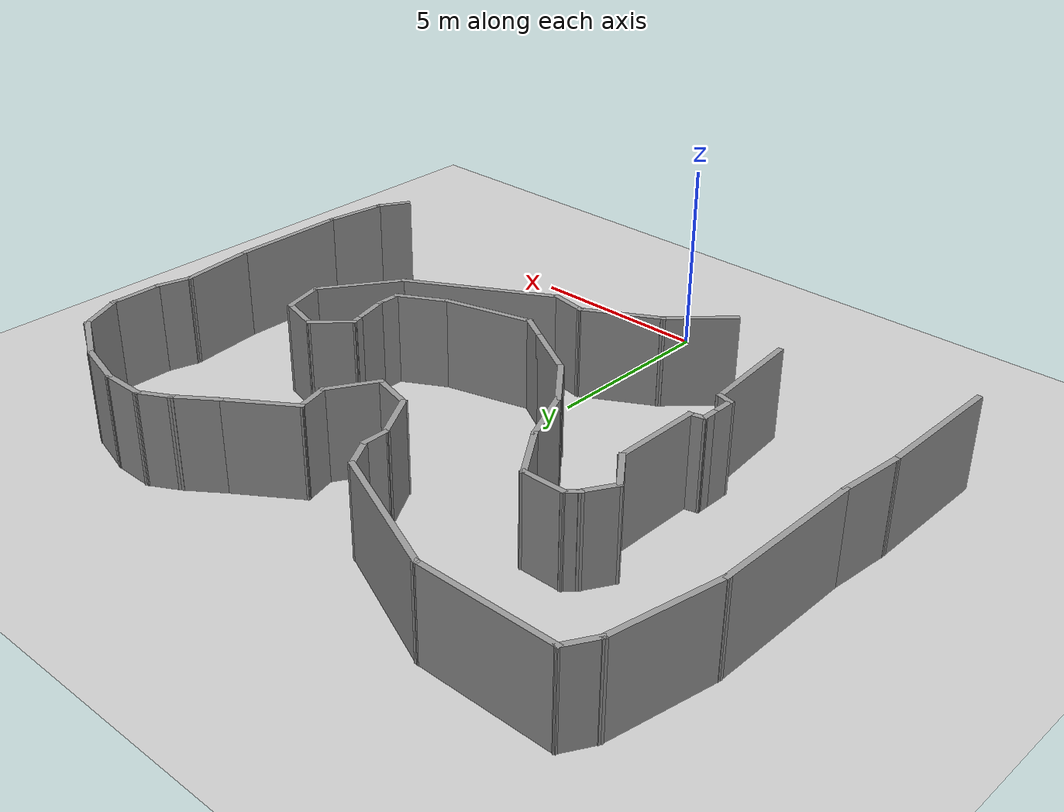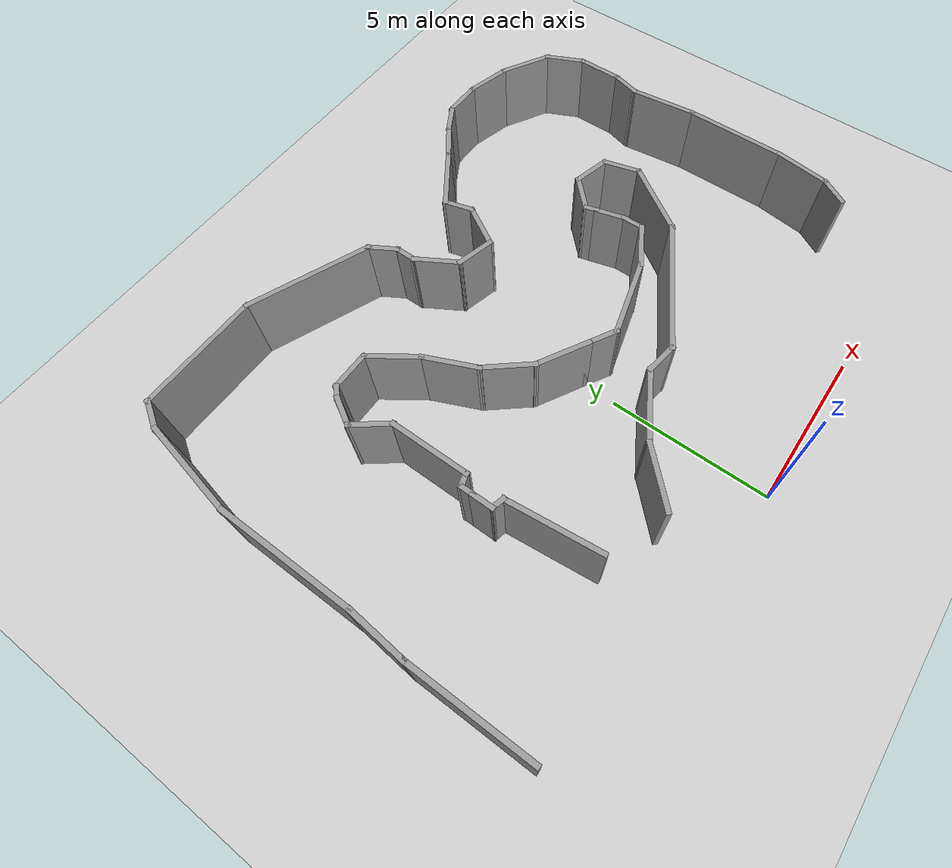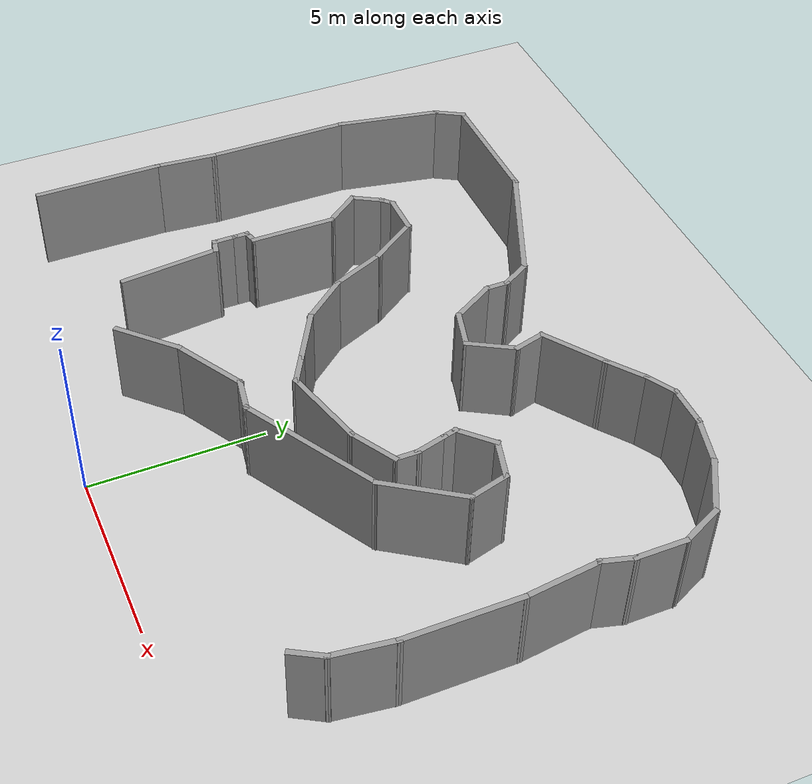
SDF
<sdf version="1.4">
 <world name="default">
  <model name="ground_plane">
   <static>1</static>
   <link name="link">
    <collision name="collision">
     <geometry><plane><normal>0 0 1</normal><size>100 100</size></plane></geometry>
     <surface><friction><ode><mu>100</mu><mu2>50</mu2></ode></friction></surface>
    </collision>
    <visual name="visual">
     <cast_shadows>0</cast_shadows>
     <geometry><plane><normal>0 0 1</normal><size>100 100</size></plane></geometry>
     <material>
      <script><uri>file://media/materials/scripts/gazebo.material</uri><name>Gazebo/Grey</name></script>
     </material>
    </visual>
    <velocity_decay><linear>0</linear><angular>0</angular></velocity_decay>
   </link>
  </model>
  <model name="BuildingDefaultName">
   <link name="Wall_35">
    <collision name="Wall_35_Collision">
     <geometry><box><size>1 0.15 2.5</size></box></geometry>
     <pose>0 0 1.25 0 -0 0</pose>
    </collision>
    <visual name="Wall_35_Visual">
     <pose>0 0 1.25 0 -0 0</pose>
     <geometry><box><size>1 0.15 2.5</size></box></geometry>
     <material>
      <script><uri>file://media/materials/scripts/gazebo.material</uri><name>Gazebo/Grey</name></script>
     </material>
    </visual>
    <velocity_decay><linear>0</linear><angular>0</angular></velocity_decay>
    <pose>8.72186 2.88524 0 0 -0 1.0472</pose>
   </link>
   <link name="Wall_36">
    <collision name="Wall_36_Collision">
     <geometry><box><size>1.7952 0.15 2.5</size></box></geometry>
     <pose>0 0 1.25 0 -0 0</pose>
    </collision>
    <visual name="Wall_36_Visual">
     <pose>0 0 1.25 0 -0 0</pose>
     <geometry><box><size>1.7952 0.15 2.5</size></box></geometry>
     <material>
      <script><uri>file://media/materials/scripts/gazebo.material</uri><name>Gazebo/Grey</name></script>
     </material>
    </visual>
    <velocity_decay><linear>0</linear><angular>0</angular></velocity_decay>
    <pose>9.04106 4.06895 0 0 -0 1.44072</pose>
   </link>
   <link name="Wall_37">
    <collision name="Wall_37_Collision">
     <geometry><box><size>3.25 0.15 2.5</size></box></geometry>
     <pose>0 0 1.25 0 -0 0</pose>
    </collision>
    <visual name="Wall_37_Visual">
     <pose>0 0 1.25 0 -0 0</pose>
     <geometry><box><size>3.25 0.15 2.5</size></box></geometry>
     <material>
      <script><uri>file://media/materials/scripts/gazebo.material</uri><name>Gazebo/Grey</name></script>
     </material>
    </visual>
    <velocity_decay><linear>0</linear><angular>0</angular></velocity_decay>
    <pose>9.14776 6.43459 0 0 -0 1.5708</pose>
   </link>
   <link name="Wall_38">
    <collision name="Wall_38_Collision">
     <geometry><box><size>2.19788 0.15 2.5</size></box></geometry>
     <pose>0 0 1.25 0 -0 0</pose>
    </collision>
    <visual name="Wall_38_Visual">
     <pose>0 0 1.25 0 -0 0</pose>
     <geometry><box><size>2.19788 0.15 2.5</size></box></geometry>
     <material>
      <script><uri>file://media/materials/scripts/gazebo.material</uri><name>Gazebo/Grey</name></script>
     </material>
    </visual>
    <velocity_decay><linear>0</linear><angular>0</angular></velocity_decay>
    <pose>9.02806 9.00151 0 0 -0 1.68797</pose>
   </link>
   <link name="Wall_39">
    <collision name="Wall_39_Collision">
     <geometry><box><size>1 0.15 2.5</size></box></geometry>
     <pose>0 0 1.25 0 -0 0</pose>
    </collision>
    <visual name="Wall_39_Visual">
     <pose>0 0 1.25 0 -0 0</pose>
     <geometry><box><size>1 0.15 2.5</size></box></geometry>
     <material>
      <script><uri>file://media/materials/scripts/gazebo.material</uri><name>Gazebo/Grey</name></script>
     </material>
    </visual>
    <velocity_decay><linear>0</linear><angular>0</angular></velocity_decay>
    <pose>9.01836 10.429 0 0 -0 1.309</pose>
   </link>
   <link name="Wall_40">
    <collision name="Wall_40_Collision">
     <geometry><box><size>1.5 0.15 2.5</size></box></geometry>
     <pose>0 0 1.25 0 -0 0</pose>
    </collision>
    <visual name="Wall_40_Visual">
     <pose>0 0 1.25 0 -0 0</pose>
     <geometry><box><size>1.5 0.15 2.5</size></box></geometry>
     <material>
      <script><uri>file://media/materials/scripts/gazebo.material</uri><name>Gazebo/Grey</name></script>
     </material>
    </visual>
    <velocity_decay><linear>0</linear><angular>0</angular></velocity_decay>
    <pose>9.12836 11.5145 0 0 -0 1.5708</pose>
   </link>
   <link name="Wall_41">
    <collision name="Wall_41_Collision">
     <geometry><box><size>1.36429 0.15 2.5</size></box></geometry>
     <pose>0 0 1.25 0 -0 0</pose>
    </collision>
    <visual name="Wall_41_Visual">
     <pose>0 0 1.25 0 -0 0</pose>
     <geometry><box><size>1.36429 0.15 2.5</size></box></geometry>
     <material>
      <script><uri>file://media/materials/scripts/gazebo.material</uri><name>Gazebo/Grey</name></script>
     </material>
    </visual>
    <velocity_decay><linear>0</linear><angular>0</angular></velocity_decay>
    <pose>8.87206 12.7399 0 0 -0 2.0066</pose>
   </link>
   <link name="Wall_42">
    <collision name="Wall_42_Collision">
     <geometry><box><size>1.75 0.15 2.5</size></box></geometry>
     <pose>0 0 1.25 0 -0 0</pose>
    </collision>
    <visual name="Wall_42_Visual">
     <pose>0 0 1.25 0 -0 0</pose>
     <geometry><box><size>1.75 0.15 2.5</size></box></geometry>
     <material>
      <script><uri>file://media/materials/scripts/gazebo.material</uri><name>Gazebo/Grey</name></script>
     </material>
    </visual>
    <velocity_decay><linear>0</linear><angular>0</angular></velocity_decay>
    <pose>7.92294 13.6903 0 0 -0 2.61799</pose>
   </link>
   <link name="Wall_44">
    <collision name="Wall_44_Collision">
     <geometry><box><size>1.5 0.15 2.5</size></box></geometry>
     <pose>0 0 1.25 0 -0 0</pose>
    </collision>
    <visual name="Wall_44_Visual">
     <pose>0 0 1.25 0 -0 0</pose>
     <geometry><box><size>1.5 0.15 2.5</size></box></geometry>
     <material>
      <script><uri>file://media/materials/scripts/gazebo.material</uri><name>Gazebo/Grey</name></script>
     </material>
    </visual>
    <velocity_decay><linear>0</linear><angular>0</angular></velocity_decay>
    <pose>6.57812 14.265 0 0 -0 2.87979</pose>
   </link>
   <link name="Wall_45">
    <collision name="Wall_45_Collision">
     <geometry><box><size>1.25 0.15 2.5</size></box></geometry>
     <pose>0 0 1.25 0 -0 0</pose>
    </collision>
    <visual name="Wall_45_Visual">
     <pose>0 0 1.25 0 -0 0</pose>
     <geometry><box><size>1.25 0.15 2.5</size></box></geometry>
     <material>
      <script><uri>file://media/materials/scripts/gazebo.material</uri><name>Gazebo/Grey</name></script>
     </material>
    </visual>
    <velocity_decay><linear>0</linear><angular>0</angular></velocity_decay>
    <pose>5.37612 14.4397 0 0 -0 3.14159</pose>
   </link>
   <link name="Wall_46">
    <collision name="Wall_46_Collision">
     <geometry><box><size>1 0.15 2.5</size></box></geometry>
     <pose>0 0 1.25 0 -0 0</pose>
    </collision>
    <visual name="Wall_46_Visual">
     <pose>0 0 1.25 0 -0 0</pose>
     <geometry><box><size>1 0.15 2.5</size></box></geometry>
     <material>
      <script><uri>file://media/materials/scripts/gazebo.material</uri><name>Gazebo/Grey</name></script>
     </material>
    </visual>
    <velocity_decay><linear>0</linear><angular>0</angular></velocity_decay>
    <pose>4.45806 14.2272 0 0 0 -2.61799</pose>
   </link>
   <link name="Wall_47">
    <collision name="Wall_47_Collision">
     <geometry><box><size>1.28671 0.15 2.5</size></box></geometry>
     <pose>0 0 1.25 0 -0 0</pose>
    </collision>
    <visual name="Wall_47_Visual">
     <pose>0 0 1.25 0 -0 0</pose>
     <geometry><box><size>1.28671 0.15 2.5</size></box></geometry>
     <material>
      <script><uri>file://media/materials/scripts/gazebo.material</uri><name>Gazebo/Grey</name></script>
     </material>
    </visual>
    <velocity_decay><linear>0</linear><angular>0</angular></velocity_decay>
    <pose>3.63675 13.6717 0 0 0 -2.4939</pose>
   </link>
   <link name="Wall_48">
    <collision name="Wall_48_Collision">
     <geometry><box><size>2.03405 0.15 2.5</size></box></geometry>
     <pose>0 0 1.25 0 -0 0</pose>
    </collision>
    <visual name="Wall_48_Visual">
     <pose>0 0 1.25 0 -0 0</pose>
     <geometry><box><size>2.03405 0.15 2.5</size></box></geometry>
     <material>
      <script><uri>file://media/materials/scripts/gazebo.material</uri><name>Gazebo/Grey</name></script>
     </material>
    </visual>
    <velocity_decay><linear>0</linear><angular>0</angular></velocity_decay>
    <pose>2.41262 12.7874 0 0 0 -2.52927</pose>
   </link>
   <link name="Wall_49">
    <collision name="Wall_49_Collision">
     <geometry><box><size>1 0.15 2.5</size></box></geometry>
     <pose>0 0 1.25 0 -0 0</pose>
    </collision>
    <visual name="Wall_49_Visual">
     <pose>0 0 1.25 0 -0 0</pose>
     <geometry><box><size>1 0.15 2.5</size></box></geometry>
     <material>
      <script><uri>file://media/materials/scripts/gazebo.material</uri><name>Gazebo/Grey</name></script>
     </material>
    </visual>
    <velocity_decay><linear>0</linear><angular>0</angular></velocity_decay>
    <pose>1.75175 11.8354 0 0 0 -1.309</pose>
   </link>
   <link name="Wall_50">
    <collision name="Wall_50_Collision">
     <geometry><box><size>1.5 0.15 2.5</size></box></geometry>
     <pose>0 0 1.25 0 -0 0</pose>
    </collision>
    <visual name="Wall_50_Visual">
     <pose>0 0 1.25 0 -0 0</pose>
     <geometry><box><size>1.5 0.15 2.5</size></box></geometry>
     <material>
      <script><uri>file://media/materials/scripts/gazebo.material</uri><name>Gazebo/Grey</name></script>
     </material>
    </visual>
    <velocity_decay><linear>0</linear><angular>0</angular></velocity_decay>
    <pose>1.52425 10.8403 0 0 0 -2.0944</pose>
   </link>
   <link name="Wall_51">
    <collision name="Wall_51_Collision">
     <geometry><box><size>1.25 0.15 2.5</size></box></geometry>
     <pose>0 0 1.25 0 -0 0</pose>
    </collision>
    <visual name="Wall_51_Visual">
     <pose>0 0 1.25 0 -0 0</pose>
     <geometry><box><size>1.25 0.15 2.5</size></box></geometry>
     <material>
      <script><uri>file://media/materials/scripts/gazebo.material</uri><name>Gazebo/Grey</name></script>
     </material>
    </visual>
    <velocity_decay><linear>0</linear><angular>0</angular></velocity_decay>
    <pose>0.655486 10.3981 0 0 -0 2.87979</pose>
   </link>
   <link name="Wall_52">
    <collision name="Wall_52_Collision">
     <geometry><box><size>1.5 0.15 2.5</size></box></geometry>
     <pose>0 0 1.25 0 -0 0</pose>
    </collision>
    <visual name="Wall_52_Visual">
     <pose>0 0 1.25 0 -0 0</pose>
     <geometry><box><size>1.5 0.15 2.5</size></box></geometry>
     <material>
      <script><uri>file://media/materials/scripts/gazebo.material</uri><name>Gazebo/Grey</name></script>
     </material>
    </visual>
    <velocity_decay><linear>0</linear><angular>0</angular></velocity_decay>
    <pose>-0.213273 11.125 0 0 -0 2.0944</pose>
   </link>
   <link name="Wall_53">
    <collision name="Wall_53_Collision">
     <geometry><box><size>0.75 0.15 2.5</size></box></geometry>
     <pose>0 0 1.25 0 -0 0</pose>
    </collision>
    <visual name="Wall_53_Visual">
     <pose>0 0 1.25 0 -0 0</pose>
     <geometry><box><size>0.75 0.15 2.5</size></box></geometry>
     <material>
      <script><uri>file://media/materials/scripts/gazebo.material</uri><name>Gazebo/Grey</name></script>
     </material>
    </visual>
    <velocity_decay><linear>0</linear><angular>0</angular></velocity_decay>
    <pose>-0.550773 12.0096 0 0 -0 1.5708</pose>
   </link>
   <link name="Wall_55">
    <collision name="Wall_55_Collision">
     <geometry><box><size>1 0.15 2.5</size></box></geometry>
     <pose>0 0 1.25 0 -0 0</pose>
    </collision>
    <visual name="Wall_55_Visual">
     <pose>0 0 1.25 0 -0 0</pose>
     <geometry><box><size>1 0.15 2.5</size></box></geometry>
     <material>
      <script><uri>file://media/materials/scripts/gazebo.material</uri><name>Gazebo/Grey</name></script>
     </material>
    </visual>
    <velocity_decay><linear>0</linear><angular>0</angular></velocity_decay>
    <pose>-0.763273 12.6777 0 0 -0 2.0944</pose>
   </link>
   <link name="Wall_56">
    <collision name="Wall_56_Collision">
     <geometry><box><size>3.91935 0.15 2.5</size></box></geometry>
     <pose>0 0 1.25 0 -0 0</pose>
    </collision>
    <visual name="Wall_56_Visual">
     <pose>0 0 1.25 0 -0 0</pose>
     <geometry><box><size>3.91935 0.15 2.5</size></box></geometry>
     <material>
      <script><uri>file://media/materials/scripts/gazebo.material</uri><name>Gazebo/Grey</name></script>
     </material>
    </visual>
    <velocity_decay><linear>0</linear><angular>0</angular></velocity_decay>
    <pose>-2.7138 13.7746 0 0 -0 2.7445</pose>
   </link>
   <link name="Wall_57">
    <collision name="Wall_57_Collision">
     <geometry><box><size>3.75 0.15 2.5</size></box></geometry>
     <pose>0 0 1.25 0 -0 0</pose>
    </collision>
    <visual name="Wall_57_Visual">
     <pose>0 0 1.25 0 -0 0</pose>
     <geometry><box><size>3.75 0.15 2.5</size></box></geometry>
     <material>
      <script><uri>file://media/materials/scripts/gazebo.material</uri><name>Gazebo/Grey</name></script>
     </material>
    </visual>
    <velocity_decay><linear>0</linear><angular>0</angular></velocity_decay>
    <pose>-6.25183 14.5035 0 0 -0 3.14159</pose>
   </link>
   <link name="Wall_58">
    <collision name="Wall_58_Collision">
     <geometry><box><size>1 0.15 2.5</size></box></geometry>
     <pose>0 0 1.25 0 -0 0</pose>
    </collision>
    <visual name="Wall_58_Visual">
     <pose>0 0 1.25 0 -0 0</pose>
     <geometry><box><size>1 0.15 2.5</size></box></geometry>
     <material>
      <script><uri>file://media/materials/scripts/gazebo.material</uri><name>Gazebo/Grey</name></script>
     </material>
    </visual>
    <velocity_decay><linear>0</linear><angular>0</angular></velocity_decay>
    <pose>-8.26432 14.1354 0 0 0 -2.0944</pose>
   </link>
   <link name="Wall_59">
    <collision name="Wall_59_Collision">
     <geometry><box><size>3.13491 0.15 2.5</size></box></geometry>
     <pose>0 0 1.25 0 -0 0</pose>
    </collision>
    <visual name="Wall_59_Visual">
     <pose>0 0 1.25 0 -0 0</pose>
     <geometry><box><size>3.13491 0.15 2.5</size></box></geometry>
     <material>
      <script><uri>file://media/materials/scripts/gazebo.material</uri><name>Gazebo/Grey</name></script>
     </material>
    </visual>
    <velocity_decay><linear>0</linear><angular>0</angular></velocity_decay>
    <pose>-8.74941 12.3 0 0 0 -1.75447</pose>
   </link>
   <link name="Wall_60">
    <collision name="Wall_60_Collision">
     <geometry><box><size>4.25 0.15 2.5</size></box></geometry>
     <pose>0 0 1.25 0 -0 0</pose>
    </collision>
    <visual name="Wall_60_Visual">
     <pose>0 0 1.25 0 -0 0</pose>
     <geometry><box><size>4.25 0.15 2.5</size></box></geometry>
     <material>
      <script><uri>file://media/materials/scripts/gazebo.material</uri><name>Gazebo/Grey</name></script>
     </material>
    </visual>
    <velocity_decay><linear>0</linear><angular>0</angular></velocity_decay>
    <pose>-9.02201 8.78267 0 0 0 -1.5708</pose>
   </link>
   <link name="Wall_61">
    <collision name="Wall_61_Collision">
     <geometry><box><size>1.85231 0.15 2.5</size></box></geometry>
     <pose>0 0 1.25 0 -0 0</pose>
    </collision>
    <visual name="Wall_61_Visual">
     <pose>0 0 1.25 0 -0 0</pose>
     <geometry><box><size>1.85231 0.15 2.5</size></box></geometry>
     <material>
      <script><uri>file://media/materials/scripts/gazebo.material</uri><name>Gazebo/Grey</name></script>
     </material>
    </visual>
    <velocity_decay><linear>0</linear><angular>0</angular></velocity_decay>
    <pose>-9.09337 5.88451 0 0 0 -1.65475</pose>
   </link>
   <link name="Wall_62">
    <collision name="Wall_62_Collision">
     <geometry><box><size>3.75 0.15 2.5</size></box></geometry>
     <pose>0 0 1.25 0 -0 0</pose>
    </collision>
    <visual name="Wall_62_Visual">
     <pose>0 0 1.25 0 -0 0</pose>
     <geometry><box><size>3.75 0.15 2.5</size></box></geometry>
     <material>
      <script><uri>file://media/materials/scripts/gazebo.material</uri><name>Gazebo/Grey</name></script>
     </material>
    </visual>
    <velocity_decay><linear>0</linear><angular>0</angular></velocity_decay>
    <pose>-9.16474 3.23635 0 0 0 -1.5708</pose>
   </link>
   <link name="Wall_66">
    <collision name="Wall_66_Collision">
     <geometry><box><size>2.91365 0.15 2.5</size></box></geometry>
     <pose>0 0 1.25 0 -0 0</pose>
    </collision>
    <visual name="Wall_66_Visual">
     <pose>0 0 1.25 0 -0 0</pose>
     <geometry><box><size>2.91365 0.15 2.5</size></box></geometry>
     <material>
      <script><uri>file://media/materials/scripts/gazebo.material</uri><name>Gazebo/Grey</name></script>
     </material>
    </visual>
    <velocity_decay><linear>0</linear><angular>0</angular></velocity_decay>
    <pose>-4.74277 4.02017 0 0 -0 1.67025</pose>
   </link>
   <link name="Wall_67">
    <collision name="Wall_67_Collision">
     <geometry><box><size>0.5 0.15 2.5</size></box></geometry>
     <pose>0 0 1.25 0 -0 0</pose>
    </collision>
    <visual name="Wall_67_Visual">
     <pose>0 0 1.25 0 -0 0</pose>
     <geometry><box><size>0.5 0.15 2.5</size></box></geometry>
     <material>
      <script><uri>file://media/materials/scripts/gazebo.material</uri><name>Gazebo/Grey</name></script>
     </material>
    </visual>
    <velocity_decay><linear>0</linear><angular>0</angular></velocity_decay>
    <pose>-5.04901 5.44047 0 0 -0 2.87979</pose>
   </link>
   <link name="Wall_68">
    <collision name="Wall_68_Collision">
     <geometry><box><size>0.75 0.15 2.5</size></box></geometry>
     <pose>0 0 1.25 0 -0 0</pose>
    </collision>
    <visual name="Wall_68_Visual">
     <pose>0 0 1.25 0 -0 0</pose>
     <geometry><box><size>0.75 0.15 2.5</size></box></geometry>
     <material>
      <script><uri>file://media/materials/scripts/gazebo.material</uri><name>Gazebo/Grey</name></script>
     </material>
    </visual>
    <velocity_decay><linear>0</linear><angular>0</angular></velocity_decay>
    <pose>-5.21805 5.78576 0 0 -0 1.5708</pose>
   </link>
   <link name="Wall_69">
    <collision name="Wall_69_Collision">
     <geometry><box><size>0.5 0.15 2.5</size></box></geometry>
     <pose>0 0 1.25 0 -0 0</pose>
    </collision>
    <visual name="Wall_69_Visual">
     <pose>0 0 1.25 0 -0 0</pose>
     <geometry><box><size>0.5 0.15 2.5</size></box></geometry>
     <material>
      <script><uri>file://media/materials/scripts/gazebo.material</uri><name>Gazebo/Grey</name></script>
     </material>
    </visual>
    <velocity_decay><linear>0</linear><angular>0</angular></velocity_decay>
    <pose>-5.21805 6.26076 0 0 -0 1.5708</pose>
   </link>
   <link name="Wall_70">
    <collision name="Wall_70_Collision">
     <geometry><box><size>0.5 0.15 2.5</size></box></geometry>
     <pose>0 0 1.25 0 -0 0</pose>
    </collision>
    <visual name="Wall_70_Visual">
     <pose>0 0 1.25 0 -0 0</pose>
     <geometry><box><size>0.5 0.15 2.5</size></box></geometry>
     <material>
      <script><uri>file://media/materials/scripts/gazebo.material</uri><name>Gazebo/Grey</name></script>
     </material>
    </visual>
    <velocity_decay><linear>0</linear><angular>0</angular></velocity_decay>
    <pose>-5.04901 6.48105 0 0 -0 0.261799</pose>
   </link>
   <link name="Wall_71">
    <collision name="Wall_71_Collision">
     <geometry><box><size>2.5 0.15 2.5</size></box></geometry>
     <pose>0 0 1.25 0 -0 0</pose>
    </collision>
    <visual name="Wall_71_Visual">
     <pose>0 0 1.25 0 -0 0</pose>
     <geometry><box><size>2.5 0.15 2.5</size></box></geometry>
     <material>
      <script><uri>file://media/materials/scripts/gazebo.material</uri><name>Gazebo/Grey</name></script>
     </material>
    </visual>
    <velocity_decay><linear>0</linear><angular>0</angular></velocity_decay>
    <pose>-4.87997 7.70135 0 0 -0 1.5708</pose>
   </link>
   <link name="Wall_72">
    <collision name="Wall_72_Collision">
     <geometry><box><size>1.31212 0.15 2.5</size></box></geometry>
     <pose>0 0 1.25 0 -0 0</pose>
    </collision>
    <visual name="Wall_72_Visual">
     <pose>0 0 1.25 0 -0 0</pose>
     <geometry><box><size>1.31212 0.15 2.5</size></box></geometry>
     <material>
      <script><uri>file://media/materials/scripts/gazebo.material</uri><name>Gazebo/Grey</name></script>
     </material>
    </visual>
    <velocity_decay><linear>0</linear><angular>0</angular></velocity_decay>
    <pose>-5.22824 9.34147 0 0 -0 2.21351</pose>
   </link>
   <link name="Wall_73">
    <collision name="Wall_73_Collision">
     <geometry><box><size>1 0.15 2.5</size></box></geometry>
     <pose>0 0 1.25 0 -0 0</pose>
    </collision>
    <visual name="Wall_73_Visual">
     <pose>0 0 1.25 0 -0 0</pose>
     <geometry><box><size>1 0.15 2.5</size></box></geometry>
     <material>
      <script><uri>file://media/materials/scripts/gazebo.material</uri><name>Gazebo/Grey</name></script>
     </material>
    </visual>
    <velocity_decay><linear>0</linear><angular>0</angular></velocity_decay>
    <pose>-5.36401 10.1746 0 0 -0 1.0472</pose>
   </link>
   <link name="Wall_74">
    <collision name="Wall_74_Collision">
     <geometry><box><size>0.5 0.15 2.5</size></box></geometry>
     <pose>0 0 1.25 0 -0 0</pose>
    </collision>
    <visual name="Wall_74_Visual">
     <pose>0 0 1.25 0 -0 0</pose>
     <geometry><box><size>0.5 0.15 2.5</size></box></geometry>
     <material>
      <script><uri>file://media/materials/scripts/gazebo.material</uri><name>Gazebo/Grey</name></script>
     </material>
    </visual>
    <velocity_decay><linear>0</linear><angular>0</angular></velocity_decay>
    <pose>-5.02777 10.6665 0 0 -0 0.785398</pose>
   </link>
   <link name="Wall_76">
    <collision name="Wall_76_Collision">
     <geometry><box><size>1.25 0.15 2.5</size></box></geometry>
     <pose>0 0 1.25 0 -0 0</pose>
    </collision>
    <visual name="Wall_76_Visual">
     <pose>0 0 1.25 0 -0 0</pose>
     <geometry><box><size>1.25 0.15 2.5</size></box></geometry>
     <material>
      <script><uri>file://media/materials/scripts/gazebo.material</uri><name>Gazebo/Grey</name></script>
     </material>
    </visual>
    <velocity_decay><linear>0</linear><angular>0</angular></velocity_decay>
    <pose>-4.35402 10.7902 0 0 -0 0</pose>
   </link>
   <link name="Wall_77">
    <collision name="Wall_77_Collision">
     <geometry><box><size>1.69465 0.15 2.5</size></box></geometry>
     <pose>0 0 1.25 0 -0 0</pose>
    </collision>
    <visual name="Wall_77_Visual">
     <pose>0 0 1.25 0 -0 0</pose>
     <geometry><box><size>1.69465 0.15 2.5</size></box></geometry>
     <material>
      <script><uri>file://media/materials/scripts/gazebo.material</uri><name>Gazebo/Grey</name></script>
     </material>
    </visual>
    <velocity_decay><linear>0</linear><angular>0</angular></velocity_decay>
    <pose>-3.37106 10.1506 0 0 0 -0.975694</pose>
   </link>
   <link name="Wall_78">
    <collision name="Wall_78_Collision">
     <geometry><box><size>1.75748 0.15 2.5</size></box></geometry>
     <pose>0 0 1.25 0 -0 0</pose>
    </collision>
    <visual name="Wall_78_Visual">
     <pose>0 0 1.25 0 -0 0</pose>
     <geometry><box><size>1.75748 0.15 2.5</size></box></geometry>
     <material>
      <script><uri>file://media/materials/scripts/gazebo.material</uri><name>Gazebo/Grey</name></script>
     </material>
    </visual>
    <velocity_decay><linear>0</linear><angular>0</angular></velocity_decay>
    <pose>-2.6215 8.77233 0 0 0 -1.1659</pose>
   </link>
   <link name="Wall_79">
    <collision name="Wall_79_Collision">
     <geometry><box><size>1.64995 0.15 2.5</size></box></geometry>
     <pose>0 0 1.25 0 -0 0</pose>
    </collision>
    <visual name="Wall_79_Visual">
     <pose>0 0 1.25 0 -0 0</pose>
     <geometry><box><size>1.64995 0.15 2.5</size></box></geometry>
     <material>
      <script><uri>file://media/materials/scripts/gazebo.material</uri><name>Gazebo/Grey</name></script>
     </material>
    </visual>
    <velocity_decay><linear>0</linear><angular>0</angular></velocity_decay>
    <pose>-1.82997 7.45313 0 0 0 -0.885067</pose>
   </link>
   <link name="Wall_80">
    <collision name="Wall_80_Collision">
     <geometry><box><size>1.75 0.15 2.5</size></box></geometry>
     <pose>0 0 1.25 0 -0 0</pose>
    </collision>
    <visual name="Wall_80_Visual">
     <pose>0 0 1.25 0 -0 0</pose>
     <geometry><box><size>1.75 0.15 2.5</size></box></geometry>
     <material>
      <script><uri>file://media/materials/scripts/gazebo.material</uri><name>Gazebo/Grey</name></script>
     </material>
    </visual>
    <velocity_decay><linear>0</linear><angular>0</angular></velocity_decay>
    <pose>-0.66224 6.47268 0 0 0 -0.523599</pose>
   </link>
   <link name="Wall_81">
    <collision name="Wall_81_Collision">
     <geometry><box><size>1 0.15 2.5</size></box></geometry>
     <pose>0 0 1.25 0 -0 0</pose>
    </collision>
    <visual name="Wall_81_Visual">
     <pose>0 0 1.25 0 -0 0</pose>
     <geometry><box><size>1 0.15 2.5</size></box></geometry>
     <material>
      <script><uri>file://media/materials/scripts/gazebo.material</uri><name>Gazebo/Grey</name></script>
     </material>
    </visual>
    <velocity_decay><linear>0</linear><angular>0</angular></velocity_decay>
    <pose>0.398641 5.86018 0 0 0 -0.523599</pose>
   </link>
   <link name="Wall_82">
    <collision name="Wall_82_Collision">
     <geometry><box><size>2.5 0.15 2.5</size></box></geometry>
     <pose>0 0 1.25 0 -0 0</pose>
    </collision>
    <visual name="Wall_82_Visual">
     <pose>0 0 1.25 0 -0 0</pose>
     <geometry><box><size>2.5 0.15 2.5</size></box></geometry>
     <material>
      <script><uri>file://media/materials/scripts/gazebo.material</uri><name>Gazebo/Grey</name></script>
     </material>
    </visual>
    <velocity_decay><linear>0</linear><angular>0</angular></velocity_decay>
    <pose>1.90166 5.95179 0 0 -0 0.261799</pose>
   </link>
   <link name="Wall_83">
    <collision name="Wall_83_Collision">
     <geometry><box><size>1.5 0.15 2.5</size></box></geometry>
     <pose>0 0 1.25 0 -0 0</pose>
    </collision>
    <visual name="Wall_83_Visual">
     <pose>0 0 1.25 0 -0 0</pose>
     <geometry><box><size>1.5 0.15 2.5</size></box></geometry>
     <material>
      <script><uri>file://media/materials/scripts/gazebo.material</uri><name>Gazebo/Grey</name></script>
     </material>
    </visual>
    <velocity_decay><linear>0</linear><angular>0</angular></velocity_decay>
    <pose>3.6212 6.5934 0 0 -0 0.523599</pose>
   </link>
   <link name="Wall_84">
    <collision name="Wall_84_Collision">
     <geometry><box><size>0.75 0.15 2.5</size></box></geometry>
     <pose>0 0 1.25 0 -0 0</pose>
    </collision>
    <visual name="Wall_84_Visual">
     <pose>0 0 1.25 0 -0 0</pose>
     <geometry><box><size>0.75 0.15 2.5</size></box></geometry>
     <material>
      <script><uri>file://media/materials/scripts/gazebo.material</uri><name>Gazebo/Grey</name></script>
     </material>
    </visual>
    <velocity_decay><linear>0</linear><angular>0</angular></velocity_decay>
    <pose>4.20576 7.23091 0 0 -0 1.5708</pose>
   </link>
   <link name="Wall_85">
    <collision name="Wall_85_Collision">
     <geometry><box><size>1 0.15 2.5</size></box></geometry>
     <pose>0 0 1.25 0 -0 0</pose>
    </collision>
    <visual name="Wall_85_Visual">
     <pose>0 0 1.25 0 -0 0</pose>
     <geometry><box><size>1 0.15 2.5</size></box></geometry>
     <material>
      <script><uri>file://media/materials/scripts/gazebo.material</uri><name>Gazebo/Grey</name></script>
     </material>
    </visual>
    <velocity_decay><linear>0</linear><angular>0</angular></velocity_decay>
    <pose>4.09576 7.94142 0 0 -0 1.8326</pose>
   </link>
   <link name="Wall_87">
    <collision name="Wall_87_Collision">
     <geometry><box><size>0.5 0.15 2.5</size></box></geometry>
     <pose>0 0 1.25 0 -0 0</pose>
    </collision>
    <visual name="Wall_87_Visual">
     <pose>0 0 1.25 0 -0 0</pose>
     <geometry><box><size>0.5 0.15 2.5</size></box></geometry>
     <material>
      <script><uri>file://media/materials/scripts/gazebo.material</uri><name>Gazebo/Grey</name></script>
     </material>
    </visual>
    <velocity_decay><linear>0</linear><angular>0</angular></velocity_decay>
    <pose>3.94047 8.52098 0 0 -0 1.8326</pose>
   </link>
   <link name="Wall_88">
    <collision name="Wall_88_Collision">
     <geometry><box><size>1.25 0.15 2.5</size></box></geometry>
     <pose>0 0 1.25 0 -0 0</pose>
    </collision>
    <visual name="Wall_88_Visual">
     <pose>0 0 1.25 0 -0 0</pose>
     <geometry><box><size>1.25 0.15 2.5</size></box></geometry>
     <material>
      <script><uri>file://media/materials/scripts/gazebo.material</uri><name>Gazebo/Grey</name></script>
     </material>
    </visual>
    <velocity_decay><linear>0</linear><angular>0</angular></velocity_decay>
    <pose>4.28409 9.07892 0 0 -0 0.785398</pose>
   </link>
   <link name="Wall_89">
    <collision name="Wall_89_Collision">
     <geometry><box><size>1.25 0.15 2.5</size></box></geometry>
     <pose>0 0 1.25 0 -0 0</pose>
    </collision>
    <visual name="Wall_89_Visual">
     <pose>0 0 1.25 0 -0 0</pose>
     <geometry><box><size>1.25 0.15 2.5</size></box></geometry>
     <material>
      <script><uri>file://media/materials/scripts/gazebo.material</uri><name>Gazebo/Grey</name></script>
     </material>
    </visual>
    <velocity_decay><linear>0</linear><angular>0</angular></velocity_decay>
    <pose>5.20426 9.32548 0 0 0 -0.261799</pose>
   </link>
   <link name="Wall_90">
    <collision name="Wall_90_Collision">
     <geometry><box><size>1.25 0.15 2.5</size></box></geometry>
     <pose>0 0 1.25 0 -0 0</pose>
    </collision>
    <visual name="Wall_90_Visual">
     <pose>0 0 1.25 0 -0 0</pose>
     <geometry><box><size>1.25 0.15 2.5</size></box></geometry>
     <material>
      <script><uri>file://media/materials/scripts/gazebo.material</uri><name>Gazebo/Grey</name></script>
     </material>
    </visual>
    <velocity_decay><linear>0</linear><angular>0</angular></velocity_decay>
    <pose>5.87786 8.65187 0 0 0 -1.309</pose>
   </link>
   <link name="Wall_91">
    <collision name="Wall_91_Collision">
     <geometry><box><size>2.46947 0.15 2.5</size></box></geometry>
     <pose>0 0 1.25 0 -0 0</pose>
    </collision>
    <visual name="Wall_91_Visual">
     <pose>0 0 1.25 0 -0 0</pose>
     <geometry><box><size>2.46947 0.15 2.5</size></box></geometry>
     <material>
      <script><uri>file://media/materials/scripts/gazebo.material</uri><name>Gazebo/Grey</name></script>
     </material>
    </visual>
    <velocity_decay><linear>0</linear><angular>0</angular></velocity_decay>
    <pose>5.37202 7.15893 0 0 0 -2.16387</pose>
   </link>
   <link name="Wall_92">
    <collision name="Wall_92_Collision">
     <geometry><box><size>4.25 0.15 2.5</size></box></geometry>
     <pose>0 0 1.25 0 -0 0</pose>
    </collision>
    <visual name="Wall_92_Visual">
     <pose>0 0 1.25 0 -0 0</pose>
     <geometry><box><size>4.25 0.15 2.5</size></box></geometry>
     <material>
      <script><uri>file://media/materials/scripts/gazebo.material</uri><name>Gazebo/Grey</name></script>
     </material>
    </visual>
    <velocity_decay><linear>0</linear><angular>0</angular></velocity_decay>
    <pose>2.94848 5.17225 0 0 0 -2.61799</pose>
   </link>
   <link name="Wall_93">
    <collision name="Wall_93_Collision">
     <geometry><box><size>1.06536 0.15 2.5</size></box></geometry>
     <pose>0 0 1.25 0 -0 0</pose>
    </collision>
    <visual name="Wall_93_Visual">
     <pose>0 0 1.25 0 -0 0</pose>
     <geometry><box><size>1.06536 0.15 2.5</size></box></geometry>
     <material>
      <script><uri>file://media/materials/scripts/gazebo.material</uri><name>Gazebo/Grey</name></script>
     </material>
    </visual>
    <velocity_decay><linear>0</linear><angular>0</angular></velocity_decay>
    <pose>0.721662 4.22242 0 0 -0 2.9766</pose>
   </link>
   <link name="Wall_94">
    <collision name="Wall_94_Collision">
     <geometry><box><size>2.25 0.15 2.5</size></box></geometry>
     <pose>0 0 1.25 0 -0 0</pose>
    </collision>
    <visual name="Wall_94_Visual">
     <pose>0 0 1.25 0 -0 0</pose>
     <geometry><box><size>2.25 0.15 2.5</size></box></geometry>
     <material>
      <script><uri>file://media/materials/scripts/gazebo.material</uri><name>Gazebo/Grey</name></script>
     </material>
    </visual>
    <velocity_decay><linear>0</linear><angular>0</angular></velocity_decay>
    <pose>-0.639128 3.77259 0 0 0 -2.61799</pose>
   </link>
   <link name="Wall_95">
    <collision name="Wall_95_Collision">
     <geometry><box><size>2 0.15 2.5</size></box></geometry>
     <pose>0 0 1.25 0 -0 0</pose>
    </collision>
    <visual name="Wall_95_Visual">
     <pose>0 0 1.25 0 -0 0</pose>
     <geometry><box><size>2 0.15 2.5</size></box></geometry>
     <material>
      <script><uri>file://media/materials/scripts/gazebo.material</uri><name>Gazebo/Grey</name></script>
     </material>
    </visual>
    <velocity_decay><linear>0</linear><angular>0</angular></velocity_decay>
    <pose>-2.20253 2.59352 0 0 0 -2.35619</pose>
   </link>
   <static>1</static>
  </model>
 </world>
</sdf>
